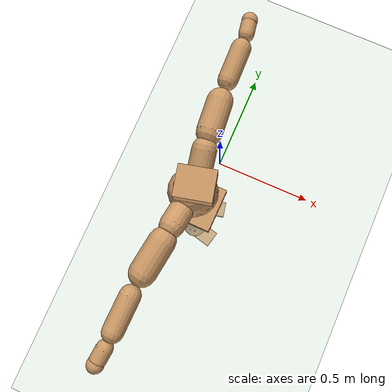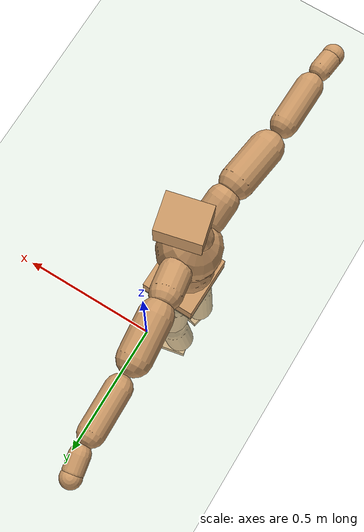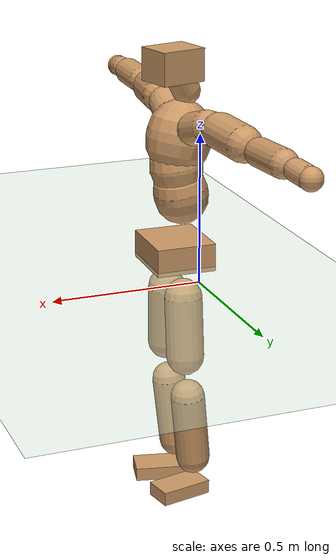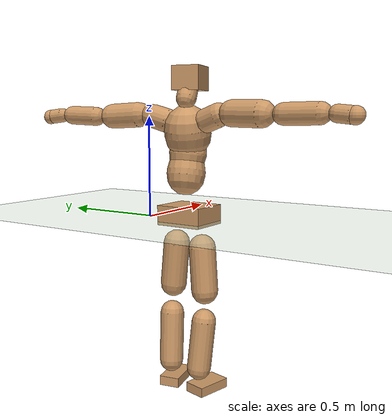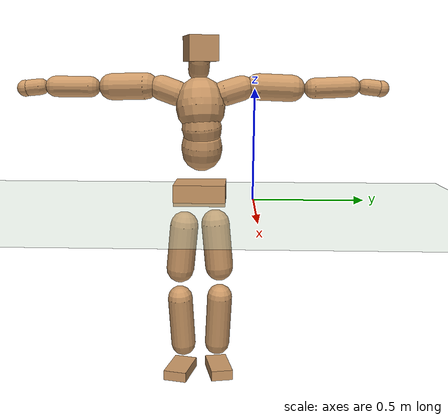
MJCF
<mujoco model="humanoid">
  <compiler coordinate="local" angle="radian"/>
  <default>
    <joint damping="0.0" armature="0.01" stiffness="0.0" limited="true"/>
    <geom conaffinity="1" condim="3" contype="7" margin="0.001" rgba="0.8 0.6 .4 1"/>
  </default>
  <asset>
    <texture type="skybox" builtin="gradient" rgb1=".4 .5 .6" rgb2="0 0 0" width="100" height="100"/>
    <texture builtin="flat" height="1278" mark="cross" markrgb="1 1 1" name="texgeom" random="0.01" rgb1="0.8 0.6 0.4" rgb2="0.8 0.6 0.4" type="cube" width="127"/>
    <texture builtin="checker" height="100" name="texplane" rgb1="0 0 0" rgb2="0.8 0.8 0.8" type="2d" width="100"/>
    <material name="MatPlane" reflectance="0.5" shininess="1" specular="1" texrepeat="60 60" texture="texplane"/>
    <material name="geom" texture="texgeom" texuniform="true"/>
  </asset>
  <worldbody>
    <light cutoff="100" diffuse="1 1 1" dir="-0 0 -1.3" directional="true" exponent="1" pos="0 0 1.3" specular=".1 .1 .1"/>
    <geom conaffinity="1" condim="3" name="floor" pos="0 0 0" rgba="0.8 0.9 0.8 1" size="100 100 .2" type="plane" material="MatPlane"/>
    <body name="Pelvis" pos="-0.0001 -0.2439 0.0381">
      <freejoint name="Pelvis"/>
      <geom type="box" contype="1" conaffinity="1" density="500" pos="-0.0104 0.0002 -0.0080" size="0.1029 0.1168 0.0475" quat="1.0000 0.0000 0.0000 -0.0091" name="Pelvis"/>
      <body name="L_Hip" pos="-0.0133 0.0645 -0.0844">
        <joint name="L_Hip_x" type="hinge" pos="0 0 0" axis="1 0 0" stiffness="800" damping="80" armature="0.02" range="-180.0000 180.0000"/>
        <joint name="L_Hip_y" type="hinge" pos="0 0 0" axis="0 1 0" stiffness="800" damping="80" armature="0.02" range="-180.0000 180.0000"/>
        <joint name="L_Hip_z" type="hinge" pos="0 0 0" axis="0 0 1" stiffness="800" damping="80" armature="0.02" range="-180.0000 180.0000"/>
        <geom type="capsule" contype="1" conaffinity="1" density="500" fromto="-0.0002 0.0063 -0.0703 -0.0007 0.0252 -0.2811" size="0.0651" name="L_Hip"/>
        <body name="L_Knee" pos="-0.0009 0.0315 -0.3514">
          <joint name="L_Knee_x" type="hinge" pos="0 0 0" axis="1 0 0" stiffness="800" damping="80" armature="0.02" range="-180.0000 180.0000"/>
          <joint name="L_Knee_y" type="hinge" pos="0 0 0" axis="0 1 0" stiffness="800" damping="80" armature="0.02" range="-180.0000 180.0000"/>
          <joint name="L_Knee_z" type="hinge" pos="0 0 0" axis="0 0 1" stiffness="800" damping="80" armature="0.02" range="-180.0000 180.0000"/>
          <geom type="capsule" contype="1" conaffinity="1" density="500" fromto="-0.0086 -0.0037 -0.0813 -0.0343 -0.0150 -0.3252" size="0.0593" name="L_Knee"/>
          <body name="L_Ankle" pos="-0.0429 -0.0187 -0.4065">
            <joint name="L_Ankle_x" type="hinge" pos="0 0 0" axis="1 0 0" stiffness="800" damping="80" armature="0.02" range="-180.0000 180.0000"/>
            <joint name="L_Ankle_y" type="hinge" pos="0 0 0" axis="0 1 0" stiffness="800" damping="80" armature="0.02" range="-180.0000 180.0000"/>
            <joint name="L_Ankle_z" type="hinge" pos="0 0 0" axis="0 0 1" stiffness="800" damping="80" armature="0.02" range="-180.0000 180.0000"/>
            <geom type="box" contype="1" conaffinity="1" density="500" pos="0.0631 0.0127 -0.0283" size="0.0919 0.051 0.0241" quat="0.9951 0.0000 0.0000 0.0990" name="L_Ankle"/>
            <body name="L_Toe" pos="0.1263 0.0254 -0.0565">
              <joint name="L_Toe_x" type="hinge" pos="0 0 0" axis="1 0 0" stiffness="500" damping="50" armature="0.02" range="-180.0000 180.0000"/>
              <joint name="L_Toe_y" type="hinge" pos="0 0 0" axis="0 1 0" stiffness="500" damping="50" armature="0.02" range="-180.0000 180.0000"/>
              <joint name="L_Toe_z" type="hinge" pos="0 0 0" axis="0 0 1" stiffness="500" damping="50" armature="0.02" range="-180.0000 180.0000"/>
              <geom type="box" contype="1" conaffinity="1" density="500" pos="0.0000 0.0000 0.0291" size="0.001 0.0026 0.0012" quat="0.9945 0.0000 0.0000 0.1050" name="L_Toe"/>
            </body>
          </body>
        </body>
      </body>
      <body name="R_Hip" pos="-0.0068 -0.0678 -0.0939">
        <joint name="R_Hip_x" type="hinge" pos="0 0 0" axis="1 0 0" stiffness="800" damping="80" armature="0.02" range="-180.0000 180.0000"/>
        <joint name="R_Hip_y" type="hinge" pos="0 0 0" axis="0 1 0" stiffness="800" damping="80" armature="0.02" range="-180.0000 180.0000"/>
        <joint name="R_Hip_z" type="hinge" pos="0 0 0" axis="0 0 1" stiffness="800" damping="80" armature="0.02" range="-180.0000 180.0000"/>
        <geom type="capsule" contype="1" conaffinity="1" density="500" fromto="-0.0023 -0.0067 -0.0709 -0.0090 -0.0269 -0.2835" size="0.0652" name="R_Hip"/>
        <body name="R_Knee" pos="-0.0113 -0.0336 -0.3543">
          <joint name="R_Knee_x" type="hinge" pos="0 0 0" axis="1 0 0" stiffness="800" damping="80" armature="0.02" range="-180.0000 180.0000"/>
          <joint name="R_Knee_y" type="hinge" pos="0 0 0" axis="0 1 0" stiffness="800" damping="80" armature="0.02" range="-180.0000 180.0000"/>
          <joint name="R_Knee_z" type="hinge" pos="0 0 0" axis="0 0 1" stiffness="800" damping="80" armature="0.02" range="-180.0000 180.0000"/>
          <geom type="capsule" contype="1" conaffinity="1" density="500" fromto="-0.0077 0.0043 -0.0801 -0.0309 0.0171 -0.3203" size="0.0591" name="R_Knee"/>
          <body name="R_Ankle" pos="-0.0386 0.0214 -0.4004">
            <joint name="R_Ankle_x" type="hinge" pos="0 0 0" axis="1 0 0" stiffness="800" damping="80" armature="0.02" range="-180.0000 180.0000"/>
            <joint name="R_Ankle_y" type="hinge" pos="0 0 0" axis="0 1 0" stiffness="800" damping="80" armature="0.02" range="-180.0000 180.0000"/>
            <joint name="R_Ankle_z" type="hinge" pos="0 0 0" axis="0 0 1" stiffness="800" damping="80" armature="0.02" range="-180.0000 180.0000"/>
            <geom type="box" contype="1" conaffinity="1" density="500" pos="0.0668 -0.0159 -0.0296" size="0.0916 0.0543 0.0236" quat="0.9932 0.0000 0.0000 -0.1168" name="R_Ankle"/>
            <body name="R_Toe" pos="0.1336 -0.0319 -0.0592">
              <joint name="R_Toe_x" type="hinge" pos="0 0 0" axis="1 0 0" stiffness="500" damping="50" armature="0.02" range="-180.0000 180.0000"/>
              <joint name="R_Toe_y" type="hinge" pos="0 0 0" axis="0 1 0" stiffness="500" damping="50" armature="0.02" range="-180.0000 180.0000"/>
              <joint name="R_Toe_z" type="hinge" pos="0 0 0" axis="0 0 1" stiffness="500" damping="50" armature="0.02" range="-180.0000 180.0000"/>
              <geom type="box" contype="1" conaffinity="1" density="500" pos="0.0000 0.0000 0.0301" size="0.0013 0.0027 0.0012" quat="0.9941 0.0000 0.0000 -0.1082" name="R_Toe"/>
            </body>
          </body>
        </body>
      </body>
      <body name="Torso" pos="-0.042 0.0044 0.1306">
        <joint name="Torso_x" type="hinge" pos="0 0 0" axis="1 0 0" stiffness="1000" damping="100" armature="0.02" range="-180.0000 180.0000"/>
        <joint name="Torso_y" type="hinge" pos="0 0 0" axis="0 1 0" stiffness="1000" damping="100" armature="0.02" range="-180.0000 180.0000"/>
        <joint name="Torso_z" type="hinge" pos="0 0 0" axis="0 0 1" stiffness="1000" damping="100" armature="0.02" range="-180.0000 180.0000"/>
        <geom type="capsule" contype="1" conaffinity="1" density="500" fromto="0.0156 0.0025 0.0781 0.0104 0.0017 0.0521" size="0.0925" name="Torso"/>
        <body name="Spine" pos="0.0261 0.0041 0.1302">
          <joint name="Spine_x" type="hinge" pos="0 0 0" axis="1 0 0" stiffness="1000" damping="100" armature="0.02" range="-180.0000 180.0000"/>
          <joint name="Spine_y" type="hinge" pos="0 0 0" axis="0 1 0" stiffness="1000" damping="100" armature="0.02" range="-180.0000 180.0000"/>
          <joint name="Spine_z" type="hinge" pos="0 0 0" axis="0 0 1" stiffness="1000" damping="100" armature="0.02" range="-180.0000 180.0000"/>
          <geom type="capsule" contype="1" conaffinity="1" density="500" fromto="0.0045 -0.0021 0.0322 0.0030 -0.0014 0.0214" size="0.0906" name="Spine"/>
          <body name="Chest" pos="0.0075 -0.0035 0.0536">
            <joint name="Chest_x" type="hinge" pos="0 0 0" axis="1 0 0" stiffness="1000" damping="100" armature="0.02" range="-180.0000 180.0000"/>
            <joint name="Chest_y" type="hinge" pos="0 0 0" axis="0 1 0" stiffness="1000" damping="100" armature="0.02" range="-180.0000 180.0000"/>
            <joint name="Chest_z" type="hinge" pos="0 0 0" axis="0 0 1" stiffness="1000" damping="100" armature="0.02" range="-180.0000 180.0000"/>
            <geom type="capsule" contype="1" conaffinity="1" density="500" fromto="-0.0201 -0.0051 0.0898 -0.0134 -0.0034 0.0599" size="0.1113" name="Chest"/>
            <body name="Neck" pos="-0.0529 -0.0151 0.2133">
              <joint name="Neck_x" type="hinge" pos="0 0 0" axis="1 0 0" stiffness="500" damping="50" armature="0.02" range="-180.0000 180.0000"/>
              <joint name="Neck_y" type="hinge" pos="0 0 0" axis="0 1 0" stiffness="500" damping="50" armature="0.02" range="-180.0000 180.0000"/>
              <joint name="Neck_z" type="hinge" pos="0 0 0" axis="0 0 1" stiffness="500" damping="50" armature="0.02" range="-180.0000 180.0000"/>
              <geom type="capsule" contype="1" conaffinity="1" density="500" fromto="0.0078 0.0015 0.0144 0.0310 0.0061 0.0575" size="0.0473" name="Neck"/>
              <body name="Head" pos="0.0388 0.0077 0.0718">
                <joint name="Head_x" type="hinge" pos="0 0 0" axis="1 0 0" stiffness="500" damping="50" armature="0.02" range="-180.0000 180.0000"/>
                <joint name="Head_y" type="hinge" pos="0 0 0" axis="0 1 0" stiffness="500" damping="50" armature="0.02" range="-180.0000 180.0000"/>
                <joint name="Head_z" type="hinge" pos="0 0 0" axis="0 0 1" stiffness="500" damping="50" armature="0.02" range="-180.0000 180.0000"/>
                <geom type="box" contype="1" conaffinity="1" density="500" pos="0.0204 0.0048 0.0369" size="0.0793 0.066 0.0554" quat="0.9932 0.0000 0.0000 0.1161" name="Head"/>
              </body>
            </body>
            <body name="L_Thorax" pos="-0.022 0.075 0.118">
              <joint name="L_Thorax_x" type="hinge" pos="0 0 0" axis="1 0 0" stiffness="500" damping="50" armature="0.02" range="-180.0000 180.0000"/>
              <joint name="L_Thorax_y" type="hinge" pos="0 0 0" axis="0 1 0" stiffness="500" damping="50" armature="0.02" range="-180.0000 180.0000"/>
              <joint name="L_Thorax_z" type="hinge" pos="0 0 0" axis="0 0 1" stiffness="500" damping="50" armature="0.02" range="-180.0000 180.0000"/>
              <geom type="capsule" contype="1" conaffinity="1" density="500" fromto="-0.0048 0.0264 0.0080 -0.0191 0.1056 0.0319" size="0.0567" name="L_Thorax"/>
              <body name="L_Shoulder" pos="-0.0238 0.132 0.0398">
                <joint name="L_Shoulder_x" type="hinge" pos="0 0 0" axis="1 0 0" stiffness="500" damping="50" armature="0.02" range="-720.0000 720.0000"/>
                <joint name="L_Shoulder_y" type="hinge" pos="0 0 0" axis="0 1 0" stiffness="500" damping="50" armature="0.02" range="-720.0000 720.0000"/>
                <joint name="L_Shoulder_z" type="hinge" pos="0 0 0" axis="0 0 1" stiffness="500" damping="50" armature="0.02" range="-720.0000 720.0000"/>
                <geom type="capsule" contype="1" conaffinity="1" density="500" fromto="-0.0050 0.0502 -0.0023 -0.0198 0.2007 -0.0090" size="0.0602" name="L_Shoulder"/>
                <body name="L_Elbow" pos="-0.0248 0.2509 -0.0113">
                  <joint name="L_Elbow_x" type="hinge" pos="0 0 0" axis="1 0 0" stiffness="500" damping="50" armature="0.02" range="-720.0000 720.0000"/>
                  <joint name="L_Elbow_y" type="hinge" pos="0 0 0" axis="0 1 0" stiffness="500" damping="50" armature="0.02" range="-720.0000 720.0000"/>
                  <joint name="L_Elbow_z" type="hinge" pos="0 0 0" axis="0 0 1" stiffness="500" damping="50" armature="0.02" range="-720.0000 720.0000"/>
                  <geom type="capsule" contype="1" conaffinity="1" density="500" fromto="-0.0012 0.0533 0.0022 -0.0050 0.2132 0.0087" size="0.0466" name="L_Elbow"/>
                  <body name="L_Wrist" pos="-0.0062 0.2665 0.0108">
                    <joint name="L_Wrist_x" type="hinge" pos="0 0 0" axis="1 0 0" stiffness="300" damping="30" armature="0.02" range="-180.0000 180.0000"/>
                    <joint name="L_Wrist_y" type="hinge" pos="0 0 0" axis="0 1 0" stiffness="300" damping="30" armature="0.02" range="-180.0000 180.0000"/>
                    <joint name="L_Wrist_z" type="hinge" pos="0 0 0" axis="0 0 1" stiffness="300" damping="30" armature="0.02" range="-180.0000 180.0000"/>
                    <geom type="capsule" contype="1" conaffinity="1" density="500" fromto="-0.0032 0.0181 -0.0021 -0.0129 0.0725 -0.0086" size="0.0361" name="L_Wrist"/>
                    <body name="L_Hand" pos="-0.0162 0.0906 -0.0107">
                      <joint name="L_Hand_x" type="hinge" pos="0 0 0" axis="1 0 0" stiffness="300" damping="30" armature="0.02" range="-180.0000 180.0000"/>
                      <joint name="L_Hand_y" type="hinge" pos="0 0 0" axis="0 1 0" stiffness="300" damping="30" armature="0.02" range="-180.0000 180.0000"/>
                      <joint name="L_Hand_z" type="hinge" pos="0 0 0" axis="0 0 1" stiffness="300" damping="30" armature="0.02" range="-180.0000 180.0000"/>
                      <geom type="sphere" contype="1" conaffinity="1" density="500" size="0.0372" pos="0.0000 0.0000 0.0000" name="L_Hand"/>
                    </body>
                  </body>
                </body>
              </body>
            </body>
            <body name="R_Thorax" pos="-0.0254 -0.0854 0.1177">
              <joint name="R_Thorax_x" type="hinge" pos="0 0 0" axis="1 0 0" stiffness="500" damping="50" armature="0.02" range="-180.0000 180.0000"/>
              <joint name="R_Thorax_y" type="hinge" pos="0 0 0" axis="0 1 0" stiffness="500" damping="50" armature="0.02" range="-180.0000 180.0000"/>
              <joint name="R_Thorax_z" type="hinge" pos="0 0 0" axis="0 0 1" stiffness="500" damping="50" armature="0.02" range="-180.0000 180.0000"/>
              <geom type="capsule" contype="1" conaffinity="1" density="500" fromto="-0.0022 -0.0239 0.0085 -0.0089 -0.0957 0.0341" size="0.0563" name="R_Thorax"/>
              <body name="R_Shoulder" pos="-0.0112 -0.1196 0.0426">
                <joint name="R_Shoulder_x" type="hinge" pos="0 0 0" axis="1 0 0" stiffness="500" damping="50" armature="0.02" range="-720.0000 720.0000"/>
                <joint name="R_Shoulder_y" type="hinge" pos="0 0 0" axis="0 1 0" stiffness="500" damping="50" armature="0.02" range="-720.0000 720.0000"/>
                <joint name="R_Shoulder_z" type="hinge" pos="0 0 0" axis="0 0 1" stiffness="500" damping="50" armature="0.02" range="-720.0000 720.0000"/>
                <geom type="capsule" contype="1" conaffinity="1" density="500" fromto="-0.0071 -0.0514 -0.0012 -0.0285 -0.2055 -0.0046" size="0.061" name="R_Shoulder"/>
                <body name="R_Elbow" pos="-0.0356 -0.2569 -0.0058">
                  <joint name="R_Elbow_x" type="hinge" pos="0 0 0" axis="1 0 0" stiffness="500" damping="50" armature="0.02" range="-720.0000 720.0000"/>
                  <joint name="R_Elbow_y" type="hinge" pos="0 0 0" axis="0 1 0" stiffness="500" damping="50" armature="0.02" range="-720.0000 720.0000"/>
                  <joint name="R_Elbow_z" type="hinge" pos="0 0 0" axis="0 0 1" stiffness="500" damping="50" armature="0.02" range="-720.0000 720.0000"/>
                  <geom type="capsule" contype="1" conaffinity="1" density="500" fromto="-0.0014 -0.0533 0.0005 -0.0055 -0.2133 0.0021" size="0.0479" name="R_Elbow"/>
                  <body name="R_Wrist" pos="-0.0069 -0.2667 0.0026">
                    <joint name="R_Wrist_x" type="hinge" pos="0 0 0" axis="1 0 0" stiffness="300" damping="30" armature="0.02" range="-180.0000 180.0000"/>
                    <joint name="R_Wrist_y" type="hinge" pos="0 0 0" axis="0 1 0" stiffness="300" damping="30" armature="0.02" range="-180.0000 180.0000"/>
                    <joint name="R_Wrist_z" type="hinge" pos="0 0 0" axis="0 0 1" stiffness="300" damping="30" armature="0.02" range="-180.0000 180.0000"/>
                    <geom type="capsule" contype="1" conaffinity="1" density="500" fromto="-0.0020 -0.0187 -0.0018 -0.0079 -0.0748 -0.0074" size="0.0374" name="R_Wrist"/>
                    <body name="R_Hand" pos="-0.0099 -0.0935 -0.0092">
                      <joint name="R_Hand_x" type="hinge" pos="0 0 0" axis="1 0 0" stiffness="300" damping="30" armature="0.02" range="-180.0000 180.0000"/>
                      <joint name="R_Hand_y" type="hinge" pos="0 0 0" axis="0 1 0" stiffness="300" damping="30" armature="0.02" range="-180.0000 180.0000"/>
                      <joint name="R_Hand_z" type="hinge" pos="0 0 0" axis="0 0 1" stiffness="300" damping="30" armature="0.02" range="-180.0000 180.0000"/>
                      <geom type="sphere" contype="1" conaffinity="1" density="500" size="0.0382" pos="0.0000 0.0000 0.0000" name="R_Hand"/>
                    </body>
                  </body>
                </body>
              </body>
            </body>
          </body>
        </body>
      </body>
    </body>
  </worldbody>
  <actuator>
    <motor name="L_Hip_x" joint="L_Hip_x" gear="500"/>
    <motor name="L_Hip_y" joint="L_Hip_y" gear="500"/>
    <motor name="L_Hip_z" joint="L_Hip_z" gear="500"/>
    <motor name="L_Knee_x" joint="L_Knee_x" gear="500"/>
    <motor name="L_Knee_y" joint="L_Knee_y" gear="500"/>
    <motor name="L_Knee_z" joint="L_Knee_z" gear="500"/>
    <motor name="L_Ankle_x" joint="L_Ankle_x" gear="500"/>
    <motor name="L_Ankle_y" joint="L_Ankle_y" gear="500"/>
    <motor name="L_Ankle_z" joint="L_Ankle_z" gear="500"/>
    <motor name="L_Toe_x" joint="L_Toe_x" gear="500"/>
    <motor name="L_Toe_y" joint="L_Toe_y" gear="500"/>
    <motor name="L_Toe_z" joint="L_Toe_z" gear="500"/>
    <motor name="R_Hip_x" joint="R_Hip_x" gear="500"/>
    <motor name="R_Hip_y" joint="R_Hip_y" gear="500"/>
    <motor name="R_Hip_z" joint="R_Hip_z" gear="500"/>
    <motor name="R_Knee_x" joint="R_Knee_x" gear="500"/>
    <motor name="R_Knee_y" joint="R_Knee_y" gear="500"/>
    <motor name="R_Knee_z" joint="R_Knee_z" gear="500"/>
    <motor name="R_Ankle_x" joint="R_Ankle_x" gear="500"/>
    <motor name="R_Ankle_y" joint="R_Ankle_y" gear="500"/>
    <motor name="R_Ankle_z" joint="R_Ankle_z" gear="500"/>
    <motor name="R_Toe_x" joint="R_Toe_x" gear="500"/>
    <motor name="R_Toe_y" joint="R_Toe_y" gear="500"/>
    <motor name="R_Toe_z" joint="R_Toe_z" gear="500"/>
    <motor name="Torso_x" joint="Torso_x" gear="500"/>
    <motor name="Torso_y" joint="Torso_y" gear="500"/>
    <motor name="Torso_z" joint="Torso_z" gear="500"/>
    <motor name="Spine_x" joint="Spine_x" gear="500"/>
    <motor name="Spine_y" joint="Spine_y" gear="500"/>
    <motor name="Spine_z" joint="Spine_z" gear="500"/>
    <motor name="Chest_x" joint="Chest_x" gear="500"/>
    <motor name="Chest_y" joint="Chest_y" gear="500"/>
    <motor name="Chest_z" joint="Chest_z" gear="500"/>
    <motor name="Neck_x" joint="Neck_x" gear="500"/>
    <motor name="Neck_y" joint="Neck_y" gear="500"/>
    <motor name="Neck_z" joint="Neck_z" gear="500"/>
    <motor name="Head_x" joint="Head_x" gear="500"/>
    <motor name="Head_y" joint="Head_y" gear="500"/>
    <motor name="Head_z" joint="Head_z" gear="500"/>
    <motor name="L_Thorax_x" joint="L_Thorax_x" gear="500"/>
    <motor name="L_Thorax_y" joint="L_Thorax_y" gear="500"/>
    <motor name="L_Thorax_z" joint="L_Thorax_z" gear="500"/>
    <motor name="L_Shoulder_x" joint="L_Shoulder_x" gear="500"/>
    <motor name="L_Shoulder_y" joint="L_Shoulder_y" gear="500"/>
    <motor name="L_Shoulder_z" joint="L_Shoulder_z" gear="500"/>
    <motor name="L_Elbow_x" joint="L_Elbow_x" gear="500"/>
    <motor name="L_Elbow_y" joint="L_Elbow_y" gear="500"/>
    <motor name="L_Elbow_z" joint="L_Elbow_z" gear="500"/>
    <motor name="L_Wrist_x" joint="L_Wrist_x" gear="500"/>
    <motor name="L_Wrist_y" joint="L_Wrist_y" gear="500"/>
    <motor name="L_Wrist_z" joint="L_Wrist_z" gear="500"/>
    <motor name="L_Hand_x" joint="L_Hand_x" gear="500"/>
    <motor name="L_Hand_y" joint="L_Hand_y" gear="500"/>
    <motor name="L_Hand_z" joint="L_Hand_z" gear="500"/>
    <motor name="R_Thorax_x" joint="R_Thorax_x" gear="500"/>
    <motor name="R_Thorax_y" joint="R_Thorax_y" gear="500"/>
    <motor name="R_Thorax_z" joint="R_Thorax_z" gear="500"/>
    <motor name="R_Shoulder_x" joint="R_Shoulder_x" gear="500"/>
    <motor name="R_Shoulder_y" joint="R_Shoulder_y" gear="500"/>
    <motor name="R_Shoulder_z" joint="R_Shoulder_z" gear="500"/>
    <motor name="R_Elbow_x" joint="R_Elbow_x" gear="500"/>
    <motor name="R_Elbow_y" joint="R_Elbow_y" gear="500"/>
    <motor name="R_Elbow_z" joint="R_Elbow_z" gear="500"/>
    <motor name="R_Wrist_x" joint="R_Wrist_x" gear="500"/>
    <motor name="R_Wrist_y" joint="R_Wrist_y" gear="500"/>
    <motor name="R_Wrist_z" joint="R_Wrist_z" gear="500"/>
    <motor name="R_Hand_x" joint="R_Hand_x" gear="500"/>
    <motor name="R_Hand_y" joint="R_Hand_y" gear="500"/>
    <motor name="R_Hand_z" joint="R_Hand_z" gear="500"/>
  </actuator>
  <contact>
    <exclude body1="Torso" body2="Chest"/>
    <exclude body1="Head" body2="Chest"/>
    <exclude body1="R_Knee" body2="R_Toe"/>
    <exclude body1="R_Knee" body2="L_Ankle"/>
    <exclude body1="R_Knee" body2="L_Toe"/>
    <exclude body1="L_Knee" body2="L_Toe"/>
    <exclude body1="L_Knee" body2="R_Ankle"/>
    <exclude body1="L_Knee" body2="R_Toe"/>
    <exclude body1="L_Shoulder" body2="Chest"/>
    <exclude body1="R_Shoulder" body2="Chest"/>
  </contact>
  <sensor/>
  <size njmax="700" nconmax="700"/>
</mujoco>
